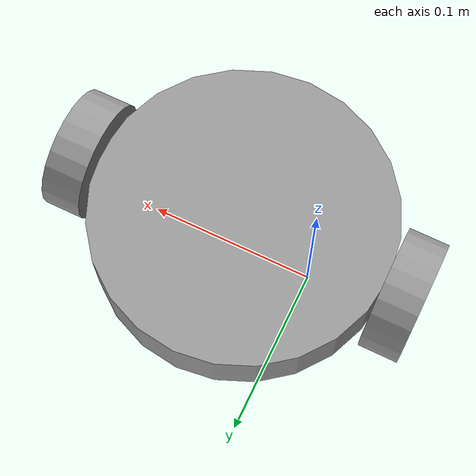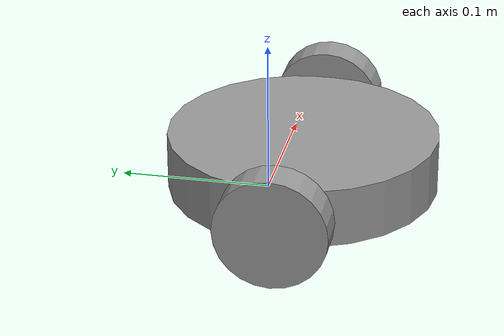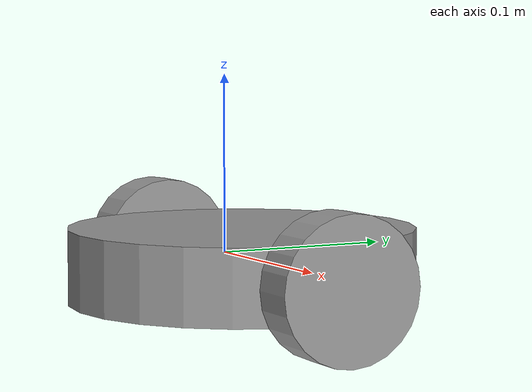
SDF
<?xml version='1.0'?>
<sdf version='1.6'>
  <model name='little_bot'>
    <link name='link_0'>
      <inertial>
        <mass>922.843</mass>
        <inertia>
          <ixx>134.581</ixx>
          <ixy>0</ixy>
          <ixz>0</ixz>
          <iyy>134.581</iyy>
          <iyz>0</iyz>
          <izz>115.355</izz>
        </inertia>
        <pose frame=''>0 0 0 0 -0 0</pose>
      </inertial>
      <pose frame=''>0.048937 -0.014643 0 0 -0 0</pose>
      <gravity>1</gravity>
      <self_collide>0</self_collide>
      <kinematic>0</kinematic>
      <enable_wind>0</enable_wind>
      <visual name='visual'>
        <pose frame=''>0 0 0 0 -0 0</pose>
        <geometry>
          <cylinder>
            <radius>0.0935</radius>
            <length>0.04</length>
          </cylinder>
        </geometry>
        <material>
          <lighting>1</lighting>
          <script>
            <uri>file://media/materials/scripts/gazebo.material</uri>
            <name>Gazebo/Grey</name>
          </script>
          <shader type='pixel'>
            <normal_map>__default__</normal_map>
          </shader>
          <ambient>0.3 0.3 0.3 1</ambient>
          <diffuse>0.7 0.7 0.7 1</diffuse>
          <specular>0.01 0.01 0.01 1</specular>
          <emissive>0 0 0 1</emissive>
        </material>
        <transparency>0</transparency>
        <cast_shadows>1</cast_shadows>
      </visual>
      <collision name='collision'>
        <laser_retro>0</laser_retro>
        <max_contacts>10</max_contacts>
        <pose frame=''>0 0 0 0 -0 0</pose>
        <geometry>
          <cylinder>
            <radius>0.0935</radius>
            <length>0.04</length>
          </cylinder>
        </geometry>
        <surface>
          <friction>
            <ode>
              <mu>1</mu>
              <mu2>1</mu2>
              <fdir1>0 0 0</fdir1>
              <slip1>0</slip1>
              <slip2>0</slip2>
            </ode>
            <torsional>
              <coefficient>1</coefficient>
              <patch_radius>0</patch_radius>
              <surface_radius>0</surface_radius>
              <use_patch_radius>1</use_patch_radius>
              <ode>
                <slip>0</slip>
              </ode>
            </torsional>
          </friction>
          <bounce>
            <restitution_coefficient>0</restitution_coefficient>
            <threshold>1e+06</threshold>
          </bounce>
          <contact>
            <collide_without_contact>0</collide_without_contact>
            <collide_without_contact_bitmask>1</collide_without_contact_bitmask>
            <collide_bitmask>1</collide_bitmask>
            <ode>
              <soft_cfm>0</soft_cfm>
              <soft_erp>0.2</soft_erp>
              <kp>1e+13</kp>
              <kd>1</kd>
              <max_vel>0.01</max_vel>
              <min_depth>0</min_depth>
            </ode>
            <bullet>
              <split_impulse>1</split_impulse>
              <split_impulse_penetration_threshold>-0.01</split_impulse_penetration_threshold>
              <soft_cfm>0</soft_cfm>
              <soft_erp>0.2</soft_erp>
              <kp>1e+13</kp>
              <kd>1</kd>
            </bullet>
          </contact>
        </surface>
      </collision>
    </link>
    <link name='link_1'>
      <inertial>
        <mass>1</mass>
        <inertia>
          <ixx>0.145833</ixx>
          <ixy>0</ixy>
          <ixz>0</ixz>
          <iyy>0.145833</iyy>
          <iyz>0</iyz>
          <izz>0.125</izz>
        </inertia>
        <pose frame=''>0 0 0 0 -0 0</pose>
      </inertial>
      <pose frame=''>0.153937 -0.014643 0 3.14159 1.57079 3.14159</pose>
      <gravity>1</gravity>
      <self_collide>0</self_collide>
      <kinematic>0</kinematic>
      <enable_wind>0</enable_wind>
      <visual name='visual'>
        <pose frame=''>0 0 0 0 -0 0</pose>
        <geometry>
          <cylinder>
            <radius>0.038</radius>
            <length>0.025</length>
          </cylinder>
        </geometry>
        <material>
          <lighting>1</lighting>
          <script>
            <uri>file://media/materials/scripts/gazebo.material</uri>
            <name>Gazebo/Grey</name>
          </script>
          <shader type='pixel'>
            <normal_map>__default__</normal_map>
          </shader>
          <emissive>0 0 0 1</emissive>
          <ambient>0.3 0.3 0.3 1</ambient>
          <diffuse>0.7 0.7 0.7 1</diffuse>
          <specular>0.01 0.01 0.01 1</specular>
        </material>
        <transparency>0</transparency>
        <cast_shadows>1</cast_shadows>
      </visual>
      <collision name='collision'>
        <laser_retro>0</laser_retro>
        <max_contacts>10</max_contacts>
        <pose frame=''>0 0 0 0 -0 0</pose>
        <geometry>
          <cylinder>
            <radius>0.038</radius>
            <length>0.025</length>
          </cylinder>
        </geometry>
        <surface>
          <friction>
            <ode>
              <mu>1</mu>
              <mu2>1</mu2>
              <fdir1>0 0 0</fdir1>
              <slip1>0</slip1>
              <slip2>0</slip2>
            </ode>
            <torsional>
              <coefficient>1</coefficient>
              <patch_radius>0</patch_radius>
              <surface_radius>0</surface_radius>
              <use_patch_radius>1</use_patch_radius>
              <ode>
                <slip>0</slip>
              </ode>
            </torsional>
          </friction>
          <bounce>
            <restitution_coefficient>0</restitution_coefficient>
            <threshold>1e+06</threshold>
          </bounce>
          <contact>
            <collide_without_contact>0</collide_without_contact>
            <collide_without_contact_bitmask>1</collide_without_contact_bitmask>
            <collide_bitmask>1</collide_bitmask>
            <ode>
              <soft_cfm>0</soft_cfm>
              <soft_erp>0.2</soft_erp>
              <kp>1e+13</kp>
              <kd>1</kd>
              <max_vel>0.01</max_vel>
              <min_depth>0</min_depth>
            </ode>
            <bullet>
              <split_impulse>1</split_impulse>
              <split_impulse_penetration_threshold>-0.01</split_impulse_penetration_threshold>
              <soft_cfm>0</soft_cfm>
              <soft_erp>0.2</soft_erp>
              <kp>1e+13</kp>
              <kd>1</kd>
            </bullet>
          </contact>
        </surface>
      </collision>
    </link>
    <link name='link_1_clone'>
      <inertial>
        <mass>1</mass>
        <inertia>
          <ixx>0.145833</ixx>
          <ixy>0</ixy>
          <ixz>0</ixz>
          <iyy>0.145833</iyy>
          <iyz>0</iyz>
          <izz>0.125</izz>
        </inertia>
        <pose frame=''>0 0 0 0 -0 0</pose>
      </inertial>
      <pose frame=''>-0.056063 -0.014643 0 0 -1.57079 0</pose>
      <gravity>1</gravity>
      <self_collide>0</self_collide>
      <kinematic>0</kinematic>
      <enable_wind>0</enable_wind>
      <visual name='visual'>
        <pose frame=''>0 0 0 0 -0 0</pose>
        <geometry>
          <cylinder>
            <radius>0.038</radius>
            <length>0.025</length>
          </cylinder>
        </geometry>
        <material>
          <lighting>1</lighting>
          <script>
            <uri>file://media/materials/scripts/gazebo.material</uri>
            <name>Gazebo/Grey</name>
          </script>
          <shader type='pixel'>
            <normal_map>__default__</normal_map>
          </shader>
          <emissive>0 0 0 1</emissive>
          <ambient>0.3 0.3 0.3 1</ambient>
          <diffuse>0.7 0.7 0.7 1</diffuse>
          <specular>0.01 0.01 0.01 1</specular>
        </material>
        <transparency>0</transparency>
        <cast_shadows>1</cast_shadows>
      </visual>
      <collision name='collision'>
        <laser_retro>0</laser_retro>
        <max_contacts>10</max_contacts>
        <pose frame=''>0 0 0 0 -0 0</pose>
        <geometry>
          <cylinder>
            <radius>0.038</radius>
            <length>0.025</length>
          </cylinder>
        </geometry>
        <surface>
          <friction>
            <ode>
              <mu>1</mu>
              <mu2>1</mu2>
              <fdir1>0 0 0</fdir1>
              <slip1>0</slip1>
              <slip2>0</slip2>
            </ode>
            <torsional>
              <coefficient>1</coefficient>
              <patch_radius>0</patch_radius>
              <surface_radius>0</surface_radius>
              <use_patch_radius>1</use_patch_radius>
              <ode>
                <slip>0</slip>
              </ode>
            </torsional>
          </friction>
          <bounce>
            <restitution_coefficient>0</restitution_coefficient>
            <threshold>1e+06</threshold>
          </bounce>
          <contact>
            <collide_without_contact>0</collide_without_contact>
            <collide_without_contact_bitmask>1</collide_without_contact_bitmask>
            <collide_bitmask>1</collide_bitmask>
            <ode>
              <soft_cfm>0</soft_cfm>
              <soft_erp>0.2</soft_erp>
              <kp>1e+13</kp>
              <kd>1</kd>
              <max_vel>0.01</max_vel>
              <min_depth>0</min_depth>
            </ode>
            <bullet>
              <split_impulse>1</split_impulse>
              <split_impulse_penetration_threshold>-0.01</split_impulse_penetration_threshold>
              <soft_cfm>0</soft_cfm>
              <soft_erp>0.2</soft_erp>
              <kp>1e+13</kp>
              <kd>1</kd>
            </bullet>
          </contact>
        </surface>
      </collision>
    </link>
    <joint name='link_0_JOINT_1' type='revolute'>
      <parent>link_0</parent>
      <child>link_1</child>
      <pose frame=''>0 0 0 3.14159 1.57079 3.14159</pose>
      <axis>
        <xyz>1 0 0</xyz>
        <use_parent_model_frame>0</use_parent_model_frame>
        <limit>
          <lower>-1.79769e+308</lower>
          <upper>1.79769e+308</upper>
          <effort>-1</effort>
          <velocity>-1</velocity>
        </limit>
        <dynamics>
          <spring_reference>0</spring_reference>
          <spring_stiffness>0</spring_stiffness>
          <damping>0</damping>
          <friction>0</friction>
        </dynamics>
      </axis>
      <physics>
        <ode>
          <limit>
            <cfm>0</cfm>
            <erp>0.2</erp>
          </limit>
          <suspension>
            <cfm>0</cfm>
            <erp>0.2</erp>
          </suspension>
        </ode>
      </physics>
    </joint>
    <joint name='link_0_JOINT_2' type='revolute'>
      <parent>link_0</parent>
      <child>link_1_clone</child>
      <pose frame=''>0 0 0 3.14159 1.57079 3.14159</pose>
      <axis>
        <xyz>1 0 0</xyz>
        <use_parent_model_frame>0</use_parent_model_frame>
        <limit>
          <lower>-1.79769e+308</lower>
          <upper>1.79769e+308</upper>
          <effort>-1</effort>
          <velocity>-1</velocity>
        </limit>
        <dynamics>
          <spring_reference>0</spring_reference>
          <spring_stiffness>0</spring_stiffness>
          <damping>0</damping>
          <friction>0</friction>
        </dynamics>
      </axis>
      <physics>
        <ode>
          <limit>
            <cfm>0</cfm>
            <erp>0.2</erp>
          </limit>
          <suspension>
            <cfm>0</cfm>
            <erp>0.2</erp>
          </suspension>
        </ode>
      </physics>
    </joint>
    <static>0</static>
    <allow_auto_disable>1</allow_auto_disable>
  </model>
</sdf>
